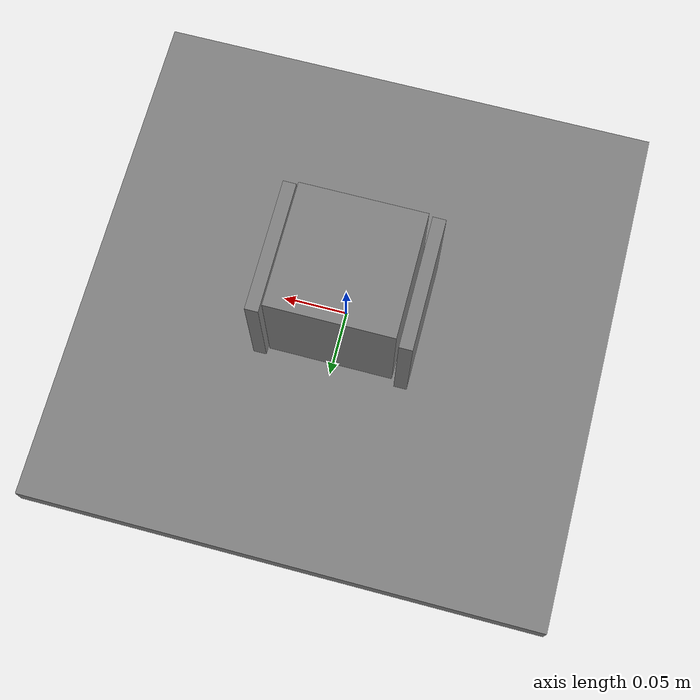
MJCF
<mujoco model="sim_005">
  <option gravity="0 0 -9.81" integrator="RK4" timestep="0.002"/>
  <worldbody>
    <body name="table" pos="0 0 0">
      <geom name="table_top" type="box" size="0.20 0.20 0.01" pos="0 0 0"/>
      <body name="opening_left" pos="-0.05500000 0 0.06"><geom type="box" size="0.00500000 0.05000000 0.05"/></body>
      <body name="opening_right" pos="0.05500000 0 0.06"><geom type="box" size="0.00500000 0.05000000 0.05"/></body>
    </body>
    <body name="object" pos="0 0 0.07000000" quat="1 0 0 0">
      <freejoint/>
      <geom name="object_geom" type="box" size="0.04750000 0.04750000 0.05000000"
            mass="0.80000000" friction="0.6 0.01 0.001"/>
    </body>
  </worldbody>
</mujoco>
